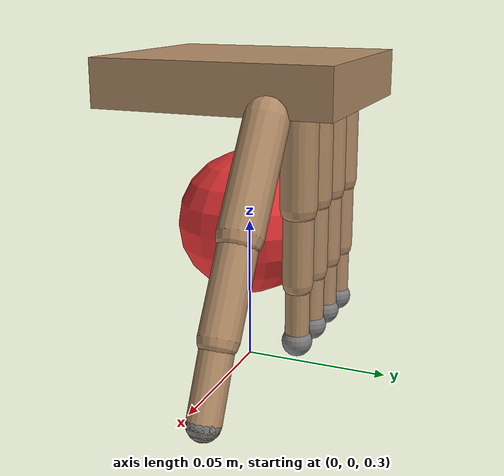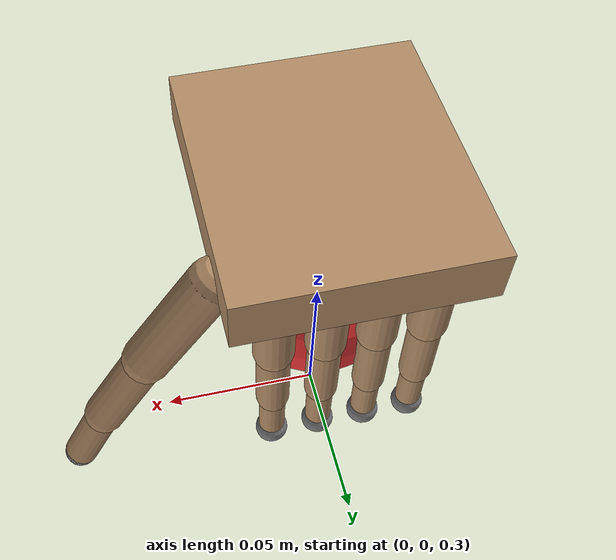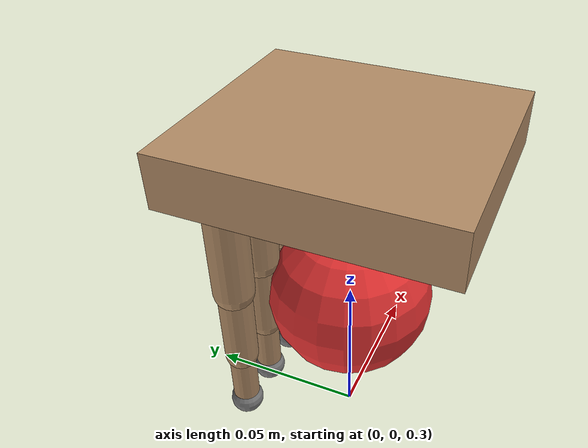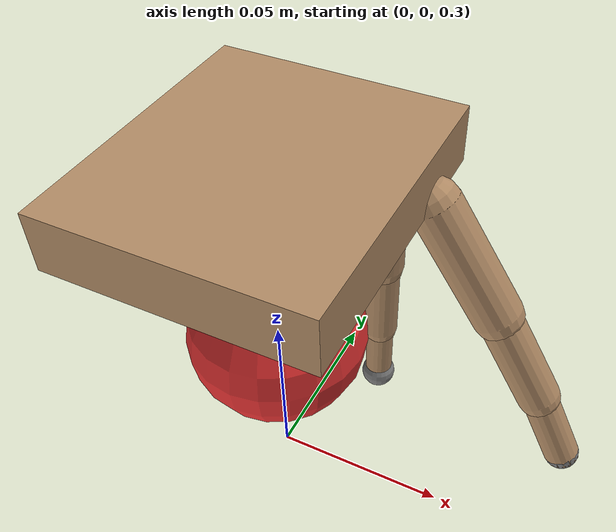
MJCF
<mujoco model="five_finger_v4">
  <compiler angle="radian"/>
  <option timestep="0.002" gravity="0 0 -9.81"/>
  <default><geom condim="4" friction="2.0 0.01 0.001"/><joint damping="0.5"/></default>
  <visual><global offwidth="1280" offheight="720"/></visual>

  <worldbody>
    <geom name="floor" type="plane" size="1 1 0.01" rgba="0.3 0.5 0.3 1"/>

    <body name="ball" pos="0 0 0.35">
      <joint name="ball_z" type="slide" axis="0 0 1" range="0 1"/>
      <geom type="sphere" size="0.025" rgba="0.9 0.2 0.2 1" mass="0.05"/>
      <site name="ball_site" pos="0 0 0"/>
    </body>

    <!-- 手掌 -->
    <body name="palm" pos="0 0 0.40">
      <geom type="box" size="0.035 0.04 0.008" rgba="0.7 0.55 0.4 1" contype="0" conaffinity="0"/>

      <!-- 拇指（右侧） -->
      <body name="thumb_b" pos="0.035 0.02 -0.008">
        <joint name="t_j1" type="hinge" axis="0 1 0" range="0 1.5"/>
        <geom type="capsule" fromto="0 0 0 0.02 0 -0.03" size="0.007" rgba="0.7 0.55 0.4 1"/>
        <body name="thumb_m" pos="0.02 0 -0.03">
          <joint name="t_j2" type="hinge" axis="0 1 0" range="0 1.2"/>
          <geom type="capsule" fromto="0 0 0 0.015 0 -0.025" size="0.006" rgba="0.7 0.55 0.4 1"/>
          <body name="thumb_t" pos="0.015 0 -0.025">
            <joint name="t_j3" type="hinge" axis="0 1 0" range="0 1.0"/>
            <geom type="capsule" fromto="0 0 0 0.01 0 -0.02" size="0.005" rgba="0.7 0.55 0.4 1"/>
            <site name="t_site" pos="0.01 0 -0.02"/>
          </body>
        </body>
      </body>

      <!-- 食指 -->
      <body name="index_b" pos="0.02 0.025 -0.008">
        <joint name="i_j1" type="hinge" axis="0 1 0" range="0 2"/>
        <geom type="capsule" fromto="0 0 0 0 0 -0.03" size="0.006" rgba="0.7 0.55 0.4 1"/>
        <body name="index_m" pos="0 0 -0.03">
          <joint name="i_j2" type="hinge" axis="0 1 0" range="0 1.8"/>
          <geom type="capsule" fromto="0 0 0 0 0 -0.025" size="0.005" rgba="0.7 0.55 0.4 1"/>
          <body name="index_t" pos="0 0 -0.025">
            <joint name="i_j3" type="hinge" axis="0 1 0" range="0 1.5"/>
            <geom type="capsule" fromto="0 0 0 0 0 -0.02" size="0.004" rgba="0.7 0.55 0.4 1"/>
            <site name="i_site" pos="0 0 -0.02"/>
          </body>
        </body>
      </body>

      <!-- 中指 -->
      <body name="middle_b" pos="0.005 0.025 -0.008">
        <joint name="m_j1" type="hinge" axis="0 1 0" range="0 2"/>
        <geom type="capsule" fromto="0 0 0 0 0 -0.03" size="0.006" rgba="0.7 0.55 0.4 1"/>
        <body name="middle_m" pos="0 0 -0.03">
          <joint name="m_j2" type="hinge" axis="0 1 0" range="0 1.8"/>
          <geom type="capsule" fromto="0 0 0 0 0 -0.025" size="0.005" rgba="0.7 0.55 0.4 1"/>
          <body name="middle_t" pos="0 0 -0.025">
            <joint name="m_j3" type="hinge" axis="0 1 0" range="0 1.5"/>
            <geom type="capsule" fromto="0 0 0 0 0 -0.02" size="0.004" rgba="0.7 0.55 0.4 1"/>
            <site name="m_site" pos="0 0 -0.02"/>
          </body>
        </body>
      </body>

      <!-- 无名指 -->
      <body name="ring_b" pos="-0.01 0.025 -0.008">
        <joint name="r_j1" type="hinge" axis="0 1 0" range="0 2"/>
        <geom type="capsule" fromto="0 0 0 0 0 -0.03" size="0.006" rgba="0.7 0.55 0.4 1"/>
        <body name="ring_m" pos="0 0 -0.03">
          <joint name="r_j2" type="hinge" axis="0 1 0" range="0 1.8"/>
          <geom type="capsule" fromto="0 0 0 0 0 -0.025" size="0.005" rgba="0.7 0.55 0.4 1"/>
          <body name="ring_t" pos="0 0 -0.025">
            <joint name="r_j3" type="hinge" axis="0 1 0" range="0 1.5"/>
            <geom type="capsule" fromto="0 0 0 0 0 -0.02" size="0.004" rgba="0.7 0.55 0.4 1"/>
            <site name="r_site" pos="0 0 -0.02"/>
          </body>
        </body>
      </body>

      <!-- 小指 -->
      <body name="pinky_b" pos="-0.025 0.025 -0.008">
        <joint name="p_j1" type="hinge" axis="0 1 0" range="0 2"/>
        <geom type="capsule" fromto="0 0 0 0 0 -0.03" size="0.006" rgba="0.7 0.55 0.4 1"/>
        <body name="pinky_m" pos="0 0 -0.03">
          <joint name="p_j2" type="hinge" axis="0 1 0" range="0 1.8"/>
          <geom type="capsule" fromto="0 0 0 0 0 -0.025" size="0.005" rgba="0.7 0.55 0.4 1"/>
          <body name="pinky_t" pos="0 0 -0.025">
            <joint name="p_j3" type="hinge" axis="0 1 0" range="0 1.5"/>
            <geom type="capsule" fromto="0 0 0 0 0 -0.02" size="0.004" rgba="0.7 0.55 0.4 1"/>
            <site name="p_site" pos="0 0 -0.02"/>
          </body>
        </body>
      </body>
    </body>

    <camera name="overview" pos="0 -0.8 0.8" xyaxes="1 0 0 0 0.5 0.85" fovy="55"/>
  </worldbody>

  <actuator>
    <position name="a_t1" joint="t_j1" kp="20" ctrlrange="0 1.5"/>
    <position name="a_t2" joint="t_j2" kp="20" ctrlrange="0 1.2"/>
    <position name="a_t3" joint="t_j3" kp="20" ctrlrange="0 1.0"/>
    <position name="a_i1" joint="i_j1" kp="20" ctrlrange="0 2"/>
    <position name="a_i2" joint="i_j2" kp="20" ctrlrange="0 1.8"/>
    <position name="a_i3" joint="i_j3" kp="20" ctrlrange="0 1.5"/>
    <position name="a_m1" joint="m_j1" kp="20" ctrlrange="0 2"/>
    <position name="a_m2" joint="m_j2" kp="20" ctrlrange="0 1.8"/>
    <position name="a_m3" joint="m_j3" kp="20" ctrlrange="0 1.5"/>
    <position name="a_r1" joint="r_j1" kp="20" ctrlrange="0 2"/>
    <position name="a_r2" joint="r_j2" kp="20" ctrlrange="0 1.8"/>
    <position name="a_r3" joint="r_j3" kp="20" ctrlrange="0 1.5"/>
    <position name="a_p1" joint="p_j1" kp="20" ctrlrange="0 2"/>
    <position name="a_p2" joint="p_j2" kp="20" ctrlrange="0 1.8"/>
    <position name="a_p3" joint="p_j3" kp="20" ctrlrange="0 1.5"/>
  </actuator>

  <sensor>
    <touch name="t_touch" site="t_site"/>
    <touch name="i_touch" site="i_site"/>
    <touch name="m_touch" site="m_site"/>
    <touch name="r_touch" site="r_site"/>
    <touch name="p_touch" site="p_site"/>
  </sensor>
</mujoco>
